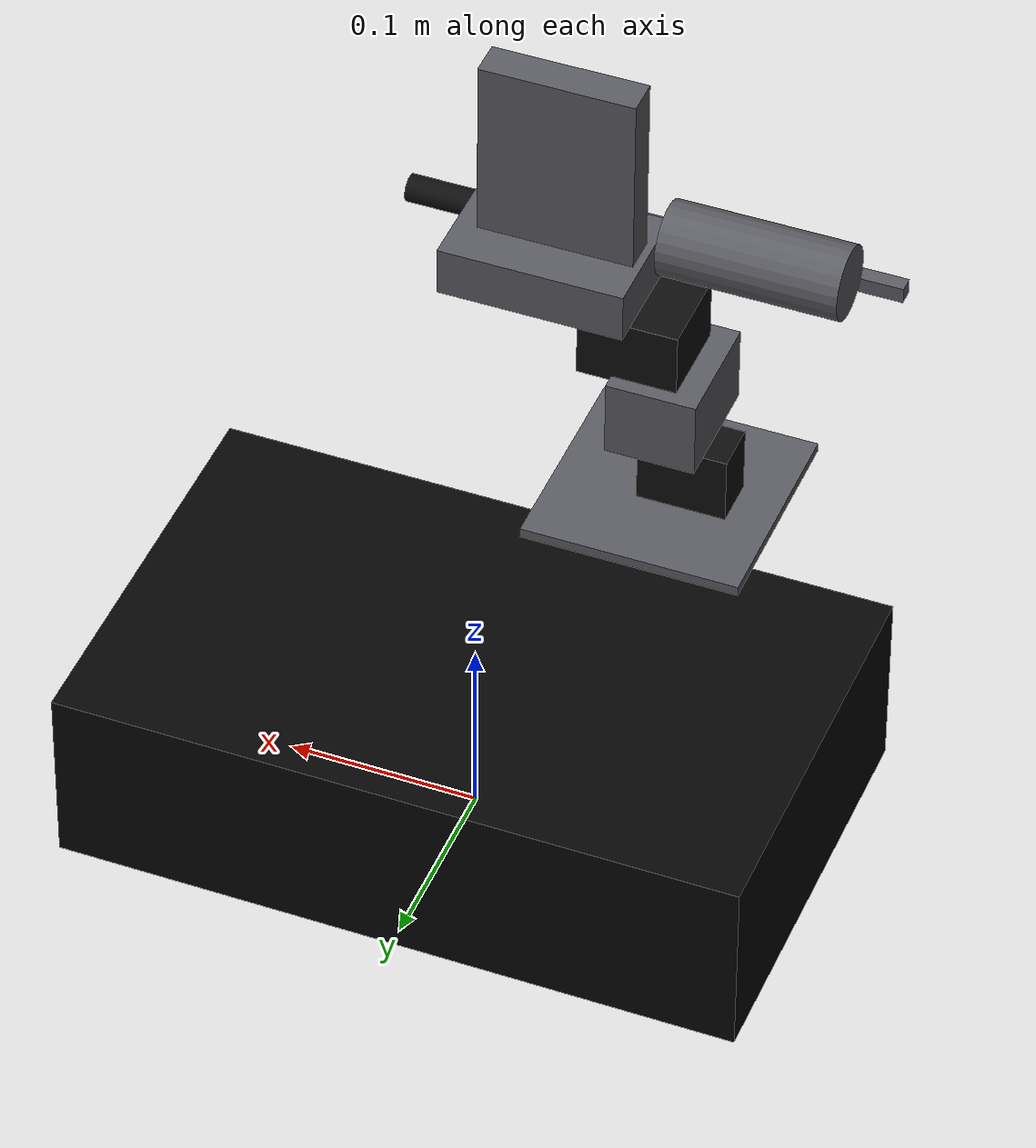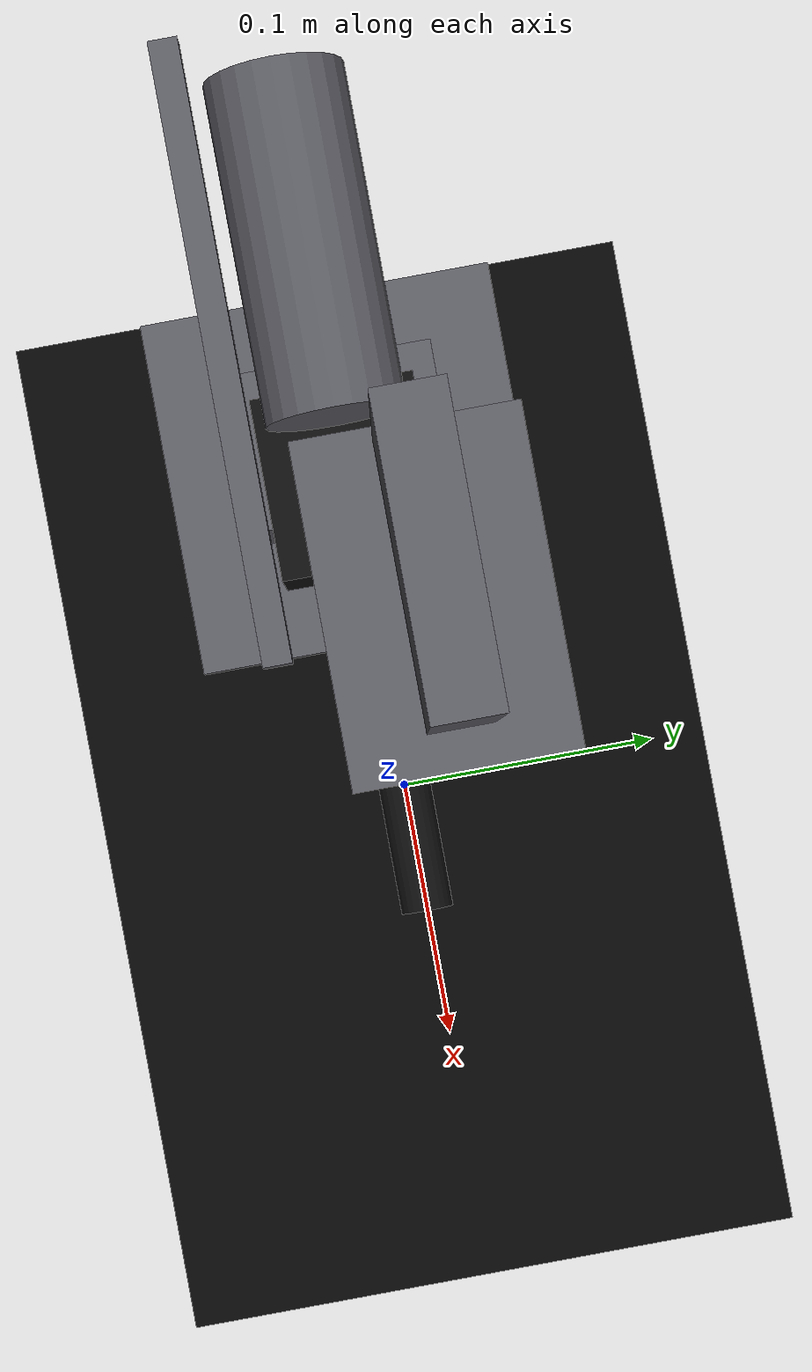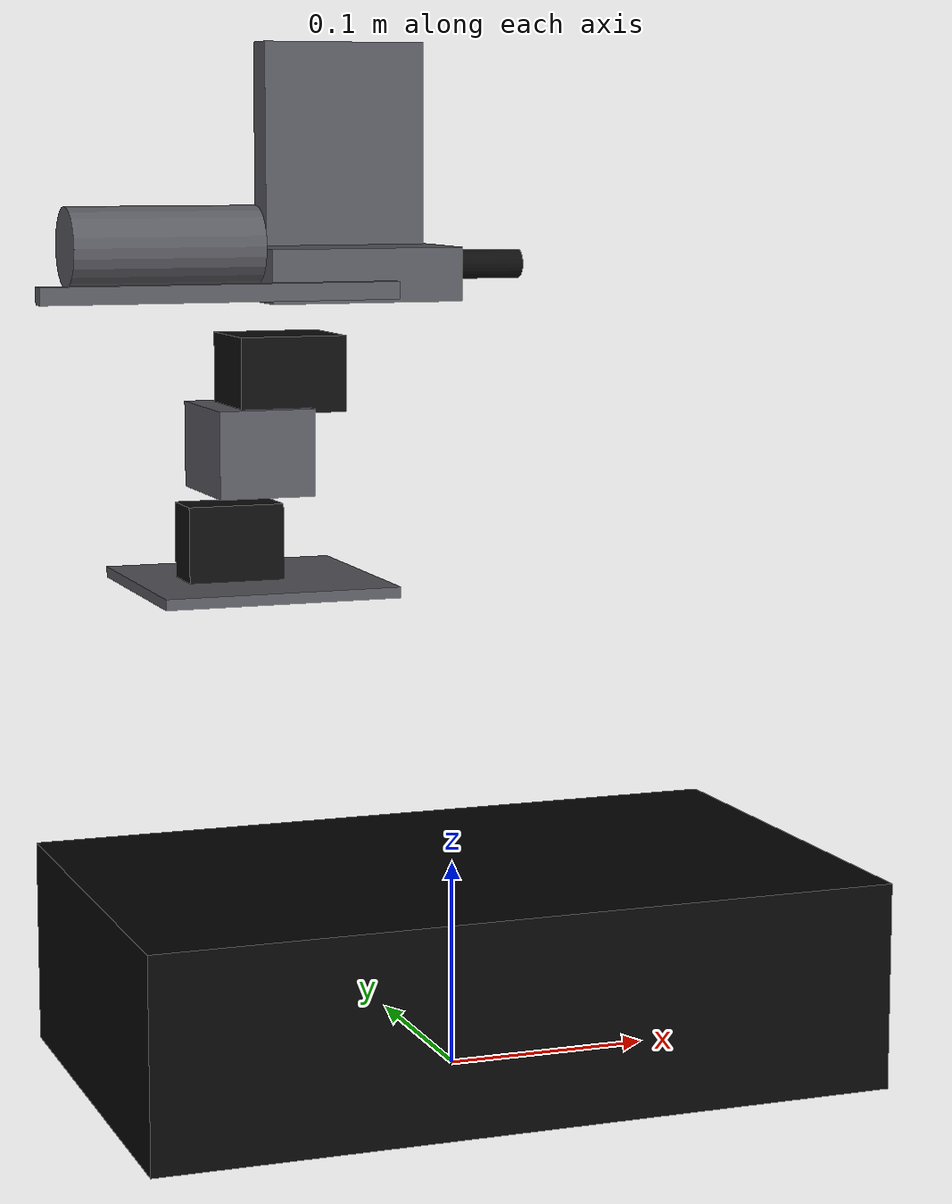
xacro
<?xml version="1.0"?>
<robot xmlns:xacro="http://www.ros.org/wiki/xacro" name="racecar_turret">
  <xacro:arg name="sim_vehicle" default="false"/>
  <xacro:include filename="../../racecarneo/urdf/racecarneo.urdf.xacro"/>

  <xacro:arg name="launcher" default="true"/>
  <xacro:property name="turret_mount_xyz" value="-0.10 0 0.24"/>
  <xacro:include filename="turret.urdf.xacro"/>
  <xacro:pantilt_turret parent="base_link" xyz="${turret_mount_xyz}" launcher="$(arg launcher)"/>

  <xacro:property name="sim_wheelbase" value="0.33"/>
  <xacro:property name="sim_track" value="0.30"/>
  <xacro:property name="sim_wheel_radius" value="0.055"/>
  <xacro:property name="sim_wheel_width" value="0.045"/>
  <xacro:property name="sim_wheel_mass" value="0.035"/>
  <xacro:property name="sim_knuckle_mass" value="0.02"/>
  <!-- The inner wheel's Ackermann angle at the 0.42 rad lock is 0.51 rad -->
  <xacro:property name="sim_knuckle_limit" value="0.55"/>
  <!-- 20 kg-cm steering servo: about 2 N m and 0.16 s per 60 degrees -->
  <xacro:property name="sim_steering_effort" value="2.0"/>
  <xacro:property name="sim_steering_velocity" value="6.5"/>
  <xacro:property name="sim_wheel_effort" value="1.0"/>
  <xacro:property name="sim_wheel_velocity" value="100.0"/>

  <xacro:macro name="sim_wheel" params="name parent xyz">
    <link name="racecarneo/${name}_wheel_link">
      <visual>
        <origin xyz="0 0 0" rpy="1.57079632679 0 0"/>
        <geometry><cylinder radius="${sim_wheel_radius}" length="${sim_wheel_width}"/></geometry>
        <material name="sim_tyre"/>
      </visual>
      <collision>
        <geometry><sphere radius="${sim_wheel_radius}"/></geometry>
      </collision>
      <inertial>
        <mass value="${sim_wheel_mass}"/>
        <inertia ixx="${sim_wheel_mass * (3 * sim_wheel_radius ** 2 + sim_wheel_width ** 2) / 12}"
                 ixy="0" ixz="0"
                 iyy="${sim_wheel_mass * sim_wheel_radius ** 2 / 2}" iyz="0"
                 izz="${sim_wheel_mass * (3 * sim_wheel_radius ** 2 + sim_wheel_width ** 2) / 12}"/>
      </inertial>
    </link>
    <joint name="${name}_wheel_joint" type="continuous">
      <parent link="${parent}"/>
      <child link="racecarneo/${name}_wheel_link"/>
      <origin xyz="${xyz}" rpy="0 0 0"/>
      <axis xyz="0 1 0"/>
      <limit effort="${sim_wheel_effort}" velocity="${sim_wheel_velocity}"/>
    </joint>
  </xacro:macro>

  <xacro:macro name="sim_steered_wheel" params="side y">
    <link name="racecarneo/front_${side}_knuckle_link">
      <inertial>
        <mass value="${sim_knuckle_mass}"/>
        <inertia ixx="0.000004" ixy="0" ixz="0" iyy="0.000004" iyz="0" izz="0.000004"/>
      </inertial>
    </link>
    <joint name="front_${side}_steering_joint" type="revolute">
      <parent link="base_link"/>
      <child link="racecarneo/front_${side}_knuckle_link"/>
      <origin xyz="${sim_wheelbase / 2} ${y} ${sim_wheel_radius}" rpy="0 0 0"/>
      <axis xyz="0 0 1"/>
      <limit lower="${-sim_knuckle_limit}" upper="${sim_knuckle_limit}"
             effort="${sim_steering_effort}" velocity="${sim_steering_velocity}"/>
    </joint>
    <xacro:sim_wheel name="front_${side}" parent="racecarneo/front_${side}_knuckle_link" xyz="0 0 0"/>
  </xacro:macro>

  <xacro:if value="$(arg sim_vehicle)">
    <material name="sim_tyre"><color rgba="0.03 0.03 0.03 1"/></material>

    <link name="racecarneo/chassis_link">
      <collision>
        <origin xyz="0 0 0.075" rpy="0 0 0"/>
        <geometry><box size="0.44 0.20 0.09"/></geometry>
      </collision>
    </link>
    <joint name="chassis_joint" type="fixed">
      <parent link="base_link"/>
      <child link="racecarneo/chassis_link"/>
      <origin xyz="0 0 0" rpy="0 0 0"/>
    </joint>

    <xacro:sim_steered_wheel side="left" y="${sim_track / 2}"/>
    <xacro:sim_steered_wheel side="right" y="${-sim_track / 2}"/>
    <xacro:sim_wheel name="rear_left" parent="base_link"
                     xyz="${-sim_wheelbase / 2} ${sim_track / 2} ${sim_wheel_radius}"/>
    <xacro:sim_wheel name="rear_right" parent="base_link"
                     xyz="${-sim_wheelbase / 2} ${-sim_track / 2} ${sim_wheel_radius}"/>
  </xacro:if>
</robot>

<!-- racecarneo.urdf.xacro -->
<robot xmlns:xacro="http://www.ros.org/wiki/xacro" name="racecarneo">
  <xacro:arg name="camera_optical_frames" default="true"/>
  <xacro:arg name="sim_geometry" default="false"/>

  <link name="base_link">
    <visual>
      <origin xyz="0 0 0.05" rpy="0 0 0"/>
      <geometry><box size="0.36 0.22 0.10"/></geometry>
      <material name="racecar_black"><color rgba="0.02 0.02 0.02 1"/></material>
    </visual>
    <collision>
      <origin xyz="0 0 0.05" rpy="0 0 0"/>
      <geometry><box size="0.36 0.22 0.10"/></geometry>
    </collision>
    <inertial>
      <mass value="3.0"/>
      <origin xyz="0 0 0.05" rpy="0 0 0"/>
      <inertia ixx="0.016" ixy="0" ixz="0" iyy="0.038" iyz="0" izz="0.048"/>
    </inertial>
  </link>

  <link name="racecarneo/lidar_link"/>
  <!-- Camera body, x forward / y left / z up (RealSense camera_link). -->
  <link name="racecarneo/camera_link"/>
  <xacro:unless value="$(arg sim_geometry)">
    <joint name="lidar_joint" type="fixed">
      <parent link="base_link"/>
      <child link="racecarneo/lidar_link"/>
      <origin xyz="0.08 0 0.18" rpy="0 0 0"/>
    </joint>
    <joint name="camera_joint" type="fixed">
      <parent link="base_link"/>
      <child link="racecarneo/camera_link"/>
      <origin xyz="0.18 0 0.22" rpy="0 0 0"/>
    </joint>
  </xacro:unless>
  <xacro:if value="$(arg sim_geometry)">
    <joint name="lidar_joint" type="fixed">
      <parent link="base_link"/>
      <child link="racecarneo/lidar_link"/>
      <origin xyz="0 0 0.125" rpy="0 0 0"/>
    </joint>
    <joint name="camera_joint" type="fixed">
      <parent link="base_link"/>
      <child link="racecarneo/camera_link"/>
      <origin xyz="0.10 0 0.120" rpy="0 -0.0141 0"/>
    </joint>
  </xacro:if>

  <!-- Optical frames: z forward, x right, y down (REP-103). -->
  <xacro:if value="$(arg camera_optical_frames)">
    <link name="racecarneo/camera_color_optical_frame"/>
    <joint name="camera_color_optical_joint" type="fixed">
      <parent link="racecarneo/camera_link"/>
      <child link="racecarneo/camera_color_optical_frame"/>
      <origin xyz="0 0 0" rpy="-1.57079632679 0 -1.57079632679"/>
    </joint>

    <link name="racecarneo/camera_depth_optical_frame"/>
    <joint name="camera_depth_optical_joint" type="fixed">
      <parent link="racecarneo/camera_link"/>
      <child link="racecarneo/camera_depth_optical_frame"/>
      <origin xyz="0 0 0" rpy="-1.57079632679 0 -1.57079632679"/>
    </joint>
  </xacro:if>

  <link name="racecarneo/imu_link"/>
  <joint name="imu_joint" type="fixed">
    <parent link="base_link"/>
    <child link="racecarneo/imu_link"/>
    <origin xyz="0 0 0.08" rpy="0 0 0"/>
  </joint>
</robot>

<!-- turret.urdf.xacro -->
<robot xmlns:xacro="http://www.ros.org/wiki/xacro">
  <!-- Turret geometry (metres, radians); systems/racecar_turret/interfaces.md -->
  <xacro:property name="pan_axis_height" value="0.045"/>
  <xacro:property name="tilt_axis_height" value="0.055"/>
  <xacro:property name="camera_forward" value="0.035"/>
  <xacro:property name="pan_limit" value="1.5708"/>
  <xacro:property name="tilt_min" value="-0.65"/>
  <xacro:property name="tilt_max" value="0.75"/>
  <!-- ST3215 at 12 V: about 2.9 N m stall, 0.222 s per 60 degrees -->
  <xacro:property name="servo_effort" value="2.9"/>
  <xacro:property name="servo_velocity" value="4.7"/>
  <!-- Launcher (hardware/parts/turret/_launcher.py, in turret/tilt_link) -->
  <xacro:property name="launcher_rack_origin" value="-0.1035 0 0.058"/>
  <xacro:property name="launcher_prime" value="0.038"/>
  <xacro:property name="launcher_pinion_radius" value="0.0135"/>
  <xacro:property name="launcher_trigger_origin" value="-0.109 0.021375 0.059"/>
  <xacro:property name="launcher_trigger_fire" value="0.6"/>
  <xacro:property name="launcher_muzzle_xyz" value="0.133 0 0.048"/>

  <xacro:macro name="pantilt_turret" params="parent xyz launcher:=true">
    <!-- The plate and the pan servo, whose body is fixed on it (ST3215,
         45 x 25 x 35 mm, output shaft up at the pan axis) -->
    <link name="turret/base_link">
      <visual>
        <origin xyz="0 0 0.0025" rpy="0 0 0"/>
        <geometry><box size="0.11 0.11 0.005"/></geometry>
        <material name="turret_grey"><color rgba="0.35 0.35 0.38 1"/></material>
      </visual>
      <visual>
        <origin xyz="-0.01 0 0.0225" rpy="0 0 0"/>
        <geometry><box size="0.045 0.025 0.035"/></geometry>
        <material name="turret_black"><color rgba="0.05 0.05 0.05 1"/></material>
      </visual>
      <inertial>
        <mass value="0.18"/>
        <origin xyz="-0.0033 0 0.0092" rpy="0 0 0"/>
        <inertia ixx="0.00014" ixy="0" ixz="0" iyy="0.00015" iyz="0" izz="0.00025"/>
      </inertial>
    </link>
    <joint name="turret_mount_joint" type="fixed">
      <parent link="${parent}"/>
      <child link="turret/base_link"/>
      <origin xyz="${xyz}" rpy="0 0 0"/>
    </joint>

    <!-- Pan stage: the bracket on the pan servo's horn and the tilt servo it
         carries -->
    <link name="turret/pan_link">
      <visual>
        <origin xyz="0 0 0.02" rpy="0 0 0"/>
        <geometry><box size="0.045 0.06 0.04"/></geometry>
        <material name="turret_grey"/>
      </visual>
      <inertial>
        <mass value="0.09"/>
        <origin xyz="0 0 0.02" rpy="0 0 0"/>
        <inertia ixx="0.000039" ixy="0" ixz="0" iyy="0.000027" iyz="0" izz="0.000042"/>
      </inertial>
    </link>
    <joint name="pan_joint" type="revolute">
      <parent link="turret/base_link"/>
      <child link="turret/pan_link"/>
      <origin xyz="0 0 ${pan_axis_height}" rpy="0 0 0"/>
      <axis xyz="0 0 -1"/>
      <limit lower="${-pan_limit}" upper="${pan_limit}" effort="${servo_effort}" velocity="${servo_velocity}"/>
    </joint>

    <!-- Tilt stage: the camera on the tilt servo's horn -->
    <link name="turret/tilt_link">
      <visual>
        <origin xyz="0.015 0 0" rpy="0 0 0"/>
        <geometry><box size="0.05 0.045 0.035"/></geometry>
        <material name="turret_black"/>
      </visual>
      <inertial>
        <mass value="0.08"/>
        <origin xyz="0.015 0 0" rpy="0 0 0"/>
        <inertia ixx="0.00002" ixy="0" ixz="0" iyy="0.00003" iyz="0" izz="0.00003"/>
      </inertial>
    </link>
    <joint name="tilt_joint" type="revolute">
      <parent link="turret/pan_link"/>
      <child link="turret/tilt_link"/>
      <origin xyz="0 0 ${tilt_axis_height}" rpy="0 0 0"/>
      <axis xyz="0 -1 0"/>
      <limit lower="${tilt_min}" upper="${tilt_max}" effort="${servo_effort}" velocity="${servo_velocity}"/>
    </joint>

    <!-- Turret camera body, x forward / y left / z up, and its optical frame -->
    <link name="turret/camera_link"/>
    <joint name="turret_camera_joint" type="fixed">
      <parent link="turret/tilt_link"/>
      <child link="turret/camera_link"/>
      <origin xyz="${camera_forward} 0 0" rpy="0 0 0"/>
    </joint>
    <link name="turret/camera_optical_frame"/>
    <joint name="turret_camera_optical_joint" type="fixed">
      <parent link="turret/camera_link"/>
      <child link="turret/camera_optical_frame"/>
      <origin xyz="0 0 0" rpy="-1.57079632679 0 -1.57079632679"/>
    </joint>

    <xacro:if value="${launcher}">
      <!-- Launcher body: plunger tube, breech, clip (full), barrel, the
           actuator and trigger servos, mounts; masses from the printed
           design's estimates -->
      <link name="turret/launcher_link">
        <visual>
          <origin xyz="-0.0405 0 0.058" rpy="0 1.57079632679 0"/>
          <geometry><cylinder radius="0.0184" length="0.089"/></geometry>
          <material name="turret_grey"/>
        </visual>
        <visual>
          <origin xyz="0.054 0.017 0.044" rpy="0 0 0"/>
          <geometry><box size="0.092 0.061 0.025"/></geometry>
          <material name="turret_grey"/>
        </visual>
        <visual>
          <origin xyz="0.05 0.017 0.104" rpy="0 0 0"/>
          <geometry><box size="0.077 0.018 0.093"/></geometry>
          <material name="turret_grey"/>
        </visual>
        <visual>
          <origin xyz="0.1105 0 0.048" rpy="0 1.57079632679 0"/>
          <geometry><cylinder radius="0.00675" length="0.045"/></geometry>
          <material name="turret_black"/>
        </visual>
        <inertial>
          <mass value="0.403"/>
          <origin xyz="-0.0247 0.0006 0.0507" rpy="0 0 0"/>
          <inertia ixx="0.000706" ixy="0.000011" ixz="-0.000101" iyy="0.002252" iyz="-0.000171" izz="0.00243"/>
        </inertial>
      </link>
      <joint name="turret_launcher_joint" type="fixed">
        <parent link="turret/tilt_link"/>
        <child link="turret/launcher_link"/>
        <origin xyz="0 0 0" rpy="0 0 0"/>
      </joint>

      <!-- Priming rack: its origin is the hook's face on the plunger rod's
           collar, at rest; positive draws it back -->
      <link name="turret/launcher_rack_link">
        <visual>
          <origin xyz="0.0833 -0.027 -0.020" rpy="0 0 0"/>
          <geometry><box size="0.167 0.008 0.008"/></geometry>
          <material name="turret_grey"/>
        </visual>
        <inertial>
          <mass value="0.0211"/>
          <origin xyz="0.0689 -0.0258 -0.0175" rpy="0 0 0"/>
          <inertia ixx="0.0000044" ixy="0.0000053" ixz="0.0000028" iyy="0.0000652" iyz="0" izz="0.0000659"/>
        </inertial>
      </link>
      <joint name="actuator_joint" type="prismatic">
        <parent link="turret/tilt_link"/>
        <child link="turret/launcher_rack_link"/>
        <origin xyz="${launcher_rack_origin}" rpy="0 0 0"/>
        <axis xyz="-1 0 0"/>
        <!-- rack force at the servo's stall torque, rack speed at its no-load speed -->
        <limit lower="0" upper="${launcher_prime}" effort="${servo_effort / launcher_pinion_radius}"
               velocity="${servo_velocity * launcher_pinion_radius}"/>
      </joint>

      <!-- Trigger arm on the trigger servo's horn: 0 safe, positive lifts
           the sear -->
      <link name="turret/launcher_trigger_link">
        <inertial>
          <mass value="0.0013"/>
          <origin xyz="0.006 -0.0015 0" rpy="0 0 0"/>
          <inertia ixx="0.00000006" ixy="0" ixz="0" iyy="0.0000001" iyz="0" izz="0.00000006"/>
        </inertial>
      </link>
      <joint name="trigger_joint" type="revolute">
        <parent link="turret/tilt_link"/>
        <child link="turret/launcher_trigger_link"/>
        <origin xyz="${launcher_trigger_origin}" rpy="0 0 0"/>
        <axis xyz="0 -1 0"/>
        <limit lower="0" upper="${launcher_trigger_fire}" effort="${servo_effort}" velocity="${servo_velocity}"/>
      </joint>

      <!-- Muzzle: the barrel's exit, x along the bore -->
      <link name="turret/muzzle"/>
      <joint name="turret_muzzle_joint" type="fixed">
        <parent link="turret/tilt_link"/>
        <child link="turret/muzzle"/>
        <origin xyz="${launcher_muzzle_xyz}" rpy="0 0 0"/>
      </joint>
    </xacro:if>
  </xacro:macro>
</robot>
